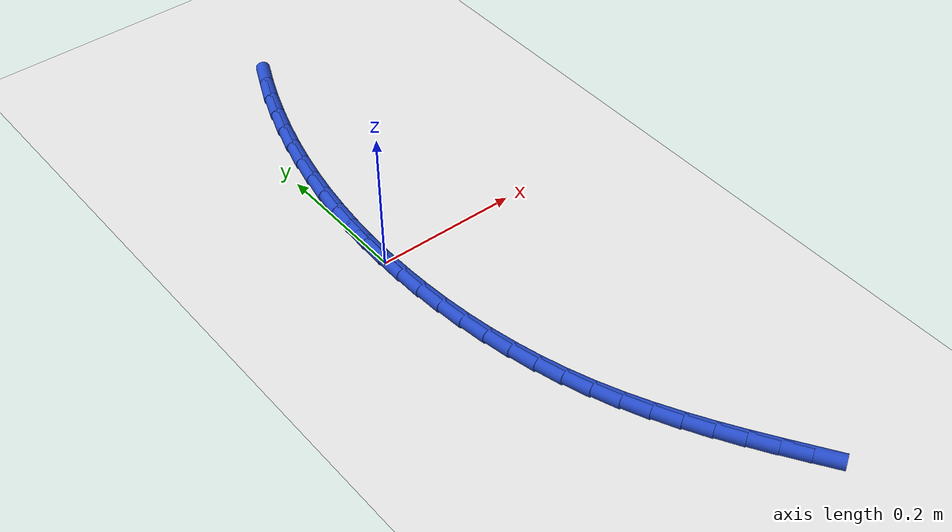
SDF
<sdf version="1.6">
 <world name="default">
  <model name="ground_plane">
   <static>1</static>
   <link name="link">
    <collision name="collision">
     <geometry><plane><normal>0 0 1</normal><size>100 100</size></plane></geometry>
     <surface><friction><ode><mu>100</mu><mu2>50</mu2></ode></friction></surface>
    </collision>
    <visual name="visual">
     <cast_shadows>0</cast_shadows>
     <geometry><plane><normal>0 0 1</normal><size>100 100</size></plane></geometry>
     <material>
      <script><uri>file://media/materials/scripts/gazebo.material</uri><name>Gazebo/WhiteGlow</name></script>
     </material>
    </visual>
   </link>
  </model>
  <model name="line">
   <link name="link_0">
    <pose>1.474514954580286e-17 6.938893903907228e-18 0.01 0 1.57 1.545686650582758</pose>
    <collision name="collision">
     <geometry><cylinder><radius>0.01</radius><length>0.08</length></cylinder></geometry>
    </collision>
    <visual name="visual">
     <material>
      <script><name>Gazebo/Blue</name><uri>file://media/materials/scripts/gazebo.material</uri></script>
     </material>
     <geometry><cylinder><radius>0.01</radius><length>0.08</length></cylinder></geometry>
    </visual>
   </link>
   <link name="link_1">
    <pose>0.0009447311950475684 0.03761628103148649 0.01 0 1.57 1.5097009069602436</pose>
    <collision name="collision">
     <geometry><cylinder><radius>0.01</radius><length>0.08</length></cylinder></geometry>
    </collision>
    <visual name="visual">
     <material>
      <script><name>Gazebo/Blue</name><uri>file://media/materials/scripts/gazebo.material</uri></script>
     </material>
     <geometry><cylinder><radius>0.01</radius><length>0.08</length></cylinder></geometry>
    </visual>
   </link>
   <link name="link_2">
    <pose>0.0032360933093642926 0.07507425185217446 0.01 0 1.57 1.4735485353333542</pose>
    <collision name="collision">
     <geometry><cylinder><radius>0.01</radius><length>0.08</length></cylinder></geometry>
    </collision>
    <visual name="visual">
     <material>
      <script><name>Gazebo/Blue</name><uri>file://media/materials/scripts/gazebo.material</uri></script>
     </material>
     <geometry><cylinder><radius>0.01</radius><length>0.08</length></cylinder></geometry>
    </visual>
   </link>
   <link name="link_3">
    <pose>0.006874574108960455 0.11237076667838555 0.01 0 1.57 1.437314409622422</pose>
    <collision name="collision">
     <geometry><cylinder><radius>0.01</radius><length>0.08</length></cylinder></geometry>
    </collision>
    <visual name="visual">
     <material>
      <script><name>Gazebo/Blue</name><uri>file://media/materials/scripts/gazebo.material</uri></script>
     </material>
     <geometry><cylinder><radius>0.01</radius><length>0.08</length></cylinder></geometry>
    </visual>
   </link>
   <link name="link_4">
    <pose>0.011860661359846331 0.1495026797264415 0.01 0 1.57 1.4010846129707828</pose>
    <collision name="collision">
     <geometry><cylinder><radius>0.01</radius><length>0.08</length></cylinder></geometry>
    </collision>
    <visual name="visual">
     <material>
      <script><name>Gazebo/Blue</name><uri>file://media/materials/scripts/gazebo.material</uri></script>
     </material>
     <geometry><cylinder><radius>0.01</radius><length>0.08</length></cylinder></geometry>
    </visual>
   </link>
   <link name="link_5">
    <pose>0.018194842828032184 0.18646684521266396 0.01 0 1.57 1.3649451765406557</pose>
    <collision name="collision">
     <geometry><cylinder><radius>0.01</radius><length>0.08</length></cylinder></geometry>
    </collision>
    <visual name="visual">
     <material>
      <script><name>Gazebo/Blue</name><uri>file://media/materials/scripts/gazebo.material</uri></script>
     </material>
     <geometry><cylinder><radius>0.01</radius><length>0.08</length></cylinder></geometry>
    </visual>
   </link>
   <link name="link_6">
    <pose>0.025877606279528273 0.22326011735337453 0.01 0 1.57 1.3289808202071065</pose>
    <collision name="collision">
     <geometry><cylinder><radius>0.01</radius><length>0.08</length></cylinder></geometry>
    </collision>
    <visual name="visual">
     <material>
      <script><name>Gazebo/Blue</name><uri>file://media/materials/scripts/gazebo.material</uri></script>
     </material>
     <geometry><cylinder><radius>0.01</radius><length>0.08</length></cylinder></geometry>
    </visual>
   </link>
   <link name="link_7">
    <pose>0.03490943948034488 0.259879350364895 0.01 0 1.57 1.2932737408723436</pose>
    <collision name="collision">
     <geometry><cylinder><radius>0.01</radius><length>0.08</length></cylinder></geometry>
    </collision>
    <visual name="visual">
     <material>
      <script><name>Gazebo/Blue</name><uri>file://media/materials/scripts/gazebo.material</uri></script>
     </material>
     <geometry><cylinder><radius>0.01</radius><length>0.08</length></cylinder></geometry>
    </visual>
   </link>
   <link name="link_8">
    <pose>0.04529083019649228 0.296321398463547 0.01 0 1.57 1.2579024909270795</pose>
    <collision name="collision">
     <geometry><cylinder><radius>0.01</radius><length>0.08</length></cylinder></geometry>
    </collision>
    <visual name="visual">
     <material>
      <script><name>Gazebo/Blue</name><uri>file://media/materials/scripts/gazebo.material</uri></script>
     </material>
     <geometry><cylinder><radius>0.01</radius><length>0.08</length></cylinder></geometry>
    </visual>
   </link>
   <link name="link_9">
    <pose>0.05702226619398071 0.33258311586565226 0.01 0 1.57 1.2228334082370127</pose>
    <collision name="collision">
     <geometry><cylinder><radius>0.01</radius><length>0.08</length></cylinder></geometry>
    </collision>
    <visual name="visual">
     <material>
      <script><name>Gazebo/Blue</name><uri>file://media/materials/scripts/gazebo.material</uri></script>
     </material>
     <geometry><cylinder><radius>0.01</radius><length>0.08</length></cylinder></geometry>
    </visual>
   </link>
   <link name="link_10">
    <pose>0.07010474169398115 0.3686506457477198 0.01 0 1.57 1.187064248298604</pose>
    <collision name="collision">
     <geometry><cylinder><radius>0.01</radius><length>0.08</length></cylinder></geometry>
    </collision>
    <visual name="visual">
     <material>
      <script><name>Gazebo/Blue</name><uri>file://media/materials/scripts/gazebo.material</uri></script>
     </material>
     <geometry><cylinder><radius>0.01</radius><length>0.08</length></cylinder></geometry>
    </visual>
   </link>
   <link name="link_11">
    <pose>0.08454382571492287 0.4044133787218165 0.01 0 1.57 1.149817026023047</pose>
    <collision name="collision">
     <geometry><cylinder><radius>0.01</radius><length>0.08</length></cylinder></geometry>
    </collision>
    <visual name="visual">
     <material>
      <script><name>Gazebo/Blue</name><uri>file://media/materials/scripts/gazebo.material</uri></script>
     </material>
     <geometry><cylinder><radius>0.01</radius><length>0.08</length></cylinder></geometry>
    </visual>
   </link>
   <link name="link_164">
    <pose>0.18164104237656056 -0.5629032174654267 0.01 0 1.57 -0.9994156878016915</pose>
    <collision name="collision">
     <geometry><cylinder><radius>0.01</radius><length>0.08</length></cylinder></geometry>
    </collision>
    <visual name="visual">
     <material>
      <script><name>Gazebo/Blue</name><uri>file://media/materials/scripts/gazebo.material</uri></script>
     </material>
     <geometry><cylinder><radius>0.01</radius><length>0.08</length></cylinder></geometry>
    </visual>
   </link>
   <link name="link_165">
    <pose>0.1612379367787935 -0.531168064369294 0.01 0 1.57 -1.0135502635931097</pose>
    <collision name="collision">
     <geometry><cylinder><radius>0.01</radius><length>0.08</length></cylinder></geometry>
    </collision>
    <visual name="visual">
     <material>
      <script><name>Gazebo/Blue</name><uri>file://media/materials/scripts/gazebo.material</uri></script>
     </material>
     <geometry><cylinder><radius>0.01</radius><length>0.08</length></cylinder></geometry>
    </visual>
   </link>
   <link name="link_166">
    <pose>0.1413414027019233 -0.49923754869835807 0.01 0 1.57 -1.0339820243577638</pose>
    <collision name="collision">
     <geometry><cylinder><radius>0.01</radius><length>0.08</length></cylinder></geometry>
    </collision>
    <visual name="visual">
     <material>
      <script><name>Gazebo/Blue</name><uri>file://media/materials/scripts/gazebo.material</uri></script>
     </material>
     <geometry><cylinder><radius>0.01</radius><length>0.08</length></cylinder></geometry>
    </visual>
   </link>
   <link name="link_167">
    <pose>0.12215983905832652 -0.4670054496659832 0.01 0 1.57 -1.060778125499785</pose>
    <collision name="collision">
     <geometry><cylinder><radius>0.01</radius><length>0.08</length></cylinder></geometry>
    </collision>
    <visual name="visual">
     <material>
      <script><name>Gazebo/Blue</name><uri>file://media/materials/scripts/gazebo.material</uri></script>
     </material>
     <geometry><cylinder><radius>0.01</radius><length>0.08</length></cylinder></geometry>
    </visual>
   </link>
   <link name="link_168">
    <pose>0.10390164476038014 -0.4343655464855343 0.01 0 1.57 -1.0939783471172984</pose>
    <collision name="collision">
     <geometry><cylinder><radius>0.01</radius><length>0.08</length></cylinder></geometry>
    </collision>
    <visual name="visual">
     <material>
      <script><name>Gazebo/Blue</name><uri>file://media/materials/scripts/gazebo.material</uri></script>
     </material>
     <geometry><cylinder><radius>0.01</radius><length>0.08</length></cylinder></geometry>
    </visual>
   </link>
   <link name="link_169">
    <pose>0.0867752187204612 -0.4012116183703765 0.01 0 1.57 -1.133562043059111</pose>
    <collision name="collision">
     <geometry><cylinder><radius>0.01</radius><length>0.08</length></cylinder></geometry>
    </collision>
    <visual name="visual">
     <material>
      <script><name>Gazebo/Blue</name><uri>file://media/materials/scripts/gazebo.material</uri></script>
     </material>
     <geometry><cylinder><radius>0.01</radius><length>0.08</length></cylinder></geometry>
    </visual>
   </link>
   <link name="link_170">
    <pose>0.07098895985094636 -0.3674374445338738 0.01 0 1.57 -1.1793832131802044</pose>
    <collision name="collision">
     <geometry><cylinder><radius>0.01</radius><length>0.08</length></cylinder></geometry>
    </collision>
    <visual name="visual">
     <material>
      <script><name>Gazebo/Blue</name><uri>file://media/materials/scripts/gazebo.material</uri></script>
     </material>
     <geometry><cylinder><radius>0.01</radius><length>0.08</length></cylinder></geometry>
    </visual>
   </link>
   <link name="link_171">
    <pose>0.05675053483333245 -0.33293742671007776 0.01 0 1.57 -1.2285697312154569</pose>
    <collision name="collision">
     <geometry><cylinder><radius>0.01</radius><length>0.08</length></cylinder></geometry>
    </collision>
    <visual name="visual">
     <material>
      <script><name>Gazebo/Blue</name><uri>file://media/materials/scripts/gazebo.material</uri></script>
     </material>
     <geometry><cylinder><radius>0.01</radius><length>0.08</length></cylinder></geometry>
    </visual>
   </link>
   <link name="link_172">
    <pose>0.04418801785903382 -0.29767363377566897 0.01 0 1.57 -1.2760983227035294</pose>
    <collision name="collision">
     <geometry><cylinder><radius>0.01</radius><length>0.08</length></cylinder></geometry>
    </collision>
    <visual name="visual">
     <material>
      <script><name>Gazebo/Blue</name><uri>file://media/materials/scripts/gazebo.material</uri></script>
     </material>
     <geometry><cylinder><radius>0.01</radius><length>0.08</length></cylinder></geometry>
    </visual>
   </link>
   <link name="link_173">
    <pose>0.03327952499556408 -0.2617356244967442 0.01 0 1.57 -1.3215475900658642</pose>
    <collision name="collision">
     <geometry><cylinder><radius>0.01</radius><length>0.08</length></cylinder></geometry>
    </collision>
    <visual name="visual">
     <material>
      <script><name>Gazebo/Blue</name><uri>file://media/materials/scripts/gazebo.material</uri></script>
     </material>
     <geometry><cylinder><radius>0.01</radius><length>0.08</length></cylinder></geometry>
    </visual>
   </link>
   <link name="link_174">
    <pose>0.023986571123226993 -0.2252270714697578 0.01 0 1.57 -1.365072122798488</pose>
    <collision name="collision">
     <geometry><cylinder><radius>0.01</radius><length>0.08</length></cylinder></geometry>
    </collision>
    <visual name="visual">
     <material>
      <script><name>Gazebo/Blue</name><uri>file://media/materials/scripts/gazebo.material</uri></script>
     </material>
     <geometry><cylinder><radius>0.01</radius><length>0.08</length></cylinder></geometry>
    </visual>
   </link>
   <link name="link_175">
    <pose>0.016270671122326292 -0.1882516472911644 0.01 0 1.57 -1.406840630661576</pose>
    <collision name="collision">
     <geometry><cylinder><radius>0.01</radius><length>0.08</length></cylinder></geometry>
    </collision>
    <visual name="visual">
     <material>
      <script><name>Gazebo/Blue</name><uri>file://media/materials/scripts/gazebo.material</uri></script>
     </material>
     <geometry><cylinder><radius>0.01</radius><length>0.08</length></cylinder></geometry>
    </visual>
   </link>
   <link name="link_176">
    <pose>0.010093339873165633 -0.15091302455741773 0.01 0 1.57 -1.4470311518550736</pose>
    <collision name="collision">
     <geometry><cylinder><radius>0.01</radius><length>0.08</length></cylinder></geometry>
    </collision>
    <visual name="visual">
     <material>
      <script><name>Gazebo/Blue</name><uri>file://media/materials/scripts/gazebo.material</uri></script>
     </material>
     <geometry><cylinder><radius>0.01</radius><length>0.08</length></cylinder></geometry>
    </visual>
   </link>
   <link name="link_177">
    <pose>0.005416092256049004 -0.11331487586497384 0.01 0 1.57 -1.4858276729082691</pose>
    <collision name="collision">
     <geometry><cylinder><radius>0.01</radius><length>0.08</length></cylinder></geometry>
    </collision>
    <visual name="visual">
     <material>
      <script><name>Gazebo/Blue</name><uri>file://media/materials/scripts/gazebo.material</uri></script>
     </material>
     <geometry><cylinder><radius>0.01</radius><length>0.08</length></cylinder></geometry>
    </visual>
   </link>
   <link name="link_178">
    <pose>0.0022004431512800265 -0.0755608738102866 0.01 0 1.57 -1.5234179844607505</pose>
    <collision name="collision">
     <geometry><cylinder><radius>0.01</radius><length>0.08</length></cylinder></geometry>
    </collision>
    <visual name="visual">
     <material>
      <script><name>Gazebo/Blue</name><uri>file://media/materials/scripts/gazebo.material</uri></script>
     </material>
     <geometry><cylinder><radius>0.01</radius><length>0.08</length></cylinder></geometry>
    </visual>
   </link>
   <link name="link_179">
    <pose>0.0004079074391624459 -0.037754690989810415 0.01 0 1.57 -1.5599925946508608</pose>
    <collision name="collision">
     <geometry><cylinder><radius>0.01</radius><length>0.08</length></cylinder></geometry>
    </collision>
    <visual name="visual">
     <material>
      <script><name>Gazebo/Blue</name><uri>file://media/materials/scripts/gazebo.material</uri></script>
     </material>
     <geometry><cylinder><radius>0.01</radius><length>0.08</length></cylinder></geometry>
    </visual>
   </link>
   <link name="link_180">
    <pose>9.540979117872439e-18 9.020562075079397e-17 0.01 0 1.57 1.5458481124170456</pose>
    <collision name="collision">
     <geometry><cylinder><radius>0.01</radius><length>0.08</length></cylinder></geometry>
    </collision>
    <visual name="visual">
     <material>
      <script><name>Gazebo/Blue</name><uri>file://media/materials/scripts/gazebo.material</uri></script>
     </material>
     <geometry><cylinder><radius>0.01</radius><length>0.08</length></cylinder></geometry>
    </visual>
   </link>
   <link name="link_181">
    <pose>0.0009382357140964685 0.037599526562690416 0.01 0 1.57 1.5458481124170456</pose>
    <collision name="collision">
     <geometry><cylinder><radius>0.01</radius><length>0.08</length></cylinder></geometry>
    </collision>
    <visual name="visual">
     <material>
      <script><name>Gazebo/Blue</name><uri>file://media/materials/scripts/gazebo.material</uri></script>
     </material>
     <geometry><cylinder><radius>0.01</radius><length>0.08</length></cylinder></geometry>
    </visual>
   </link>
  </model>
 </world>
</sdf>
